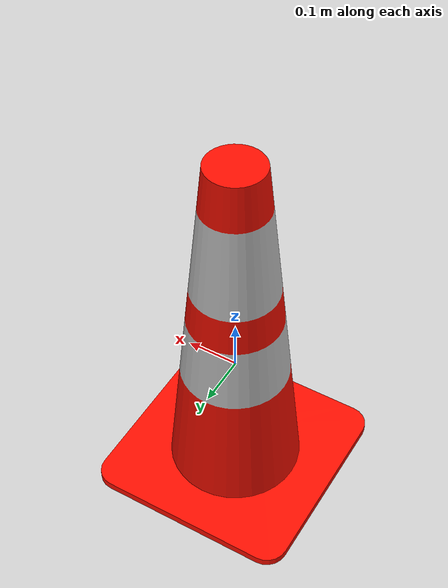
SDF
<?xml version="1.0" ?>
<sdf version="1.6">
  <model name="taffic_cone">
    <link name="base_link">
      <allow_auto_disable>1</allow_auto_disable>
      <laser_retro>150</laser_retro>

      <visual name="visual">
        <pose>0.00000 0.00000 0.00000 0.00000 0.00000 0.00000</pose>
        <cast_shadows>1</cast_shadows>
        <geometry><mesh><uri>model://taffic_cone/meshes/Cylinder.dae</uri><scale>1 1 1</scale></mesh></geometry>
      </visual>

      <inertial>
        <pose>0.00000 0.00000 0.10732 0.00000 0.00000 0.00000</pose>
        <mass>0.10000</mass>
        <inertia>
          <ixx>0.00583</ixx>
          <ixy>0.00000</ixy>
          <ixz>0.00000</ixz>
          <iyy>0.00583</iyy>
          <iyz>0.00000</iyz>
          <izz>0.00224</izz>
        </inertia>
      </inertial>

      <collision name="collision">
        <pose>0.00000 0.00000 0.10732 0.00000 0.00000 0.00000</pose>
        <geometry><cylinder><radius>0.21171</radius><length>0.75176</length></cylinder></geometry>
        <surface>
          <friction>
            <ode>
              <mu>1.0</mu>
              <mu2>1.0</mu2>
            </ode>
          </friction>
          <contact>
            <ode>
              <kp>100000.0</kp>
              <kd>100.0</kd>
              <min_depth>0.001</min_depth>
              <max_vel>0.1</max_vel>
            </ode>
          </contact>
        </surface>
      </collision>
    </link>
  </model>
</sdf>
